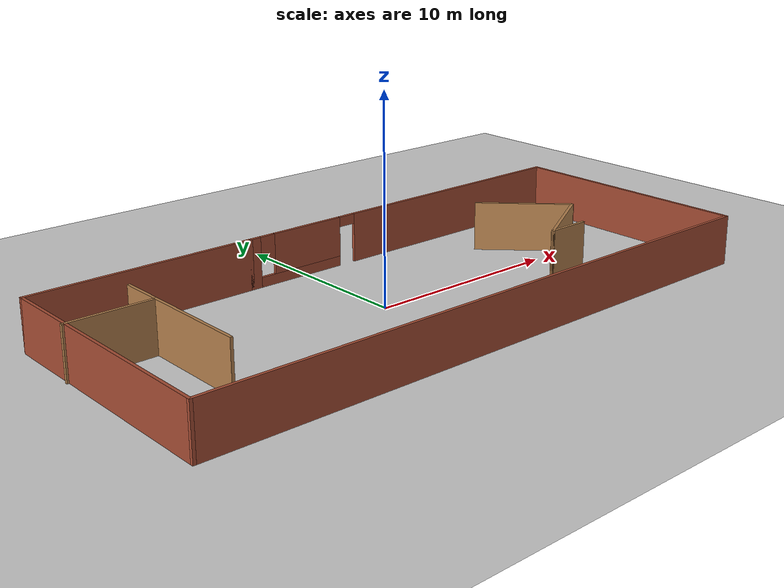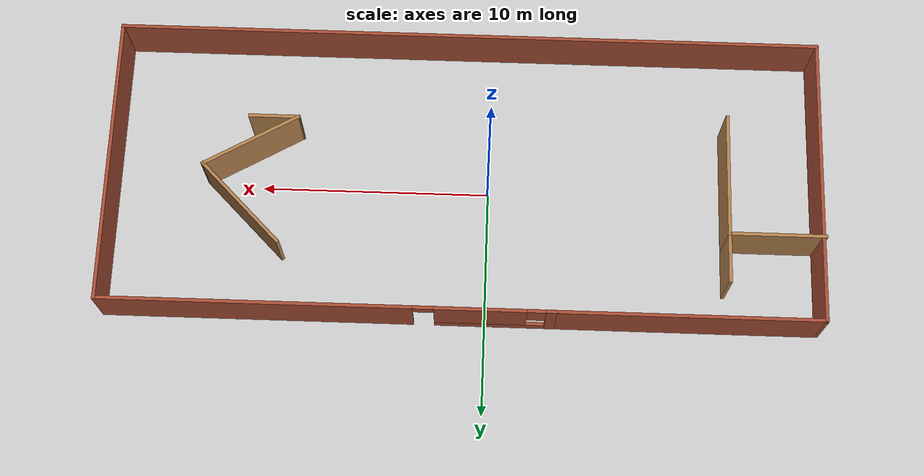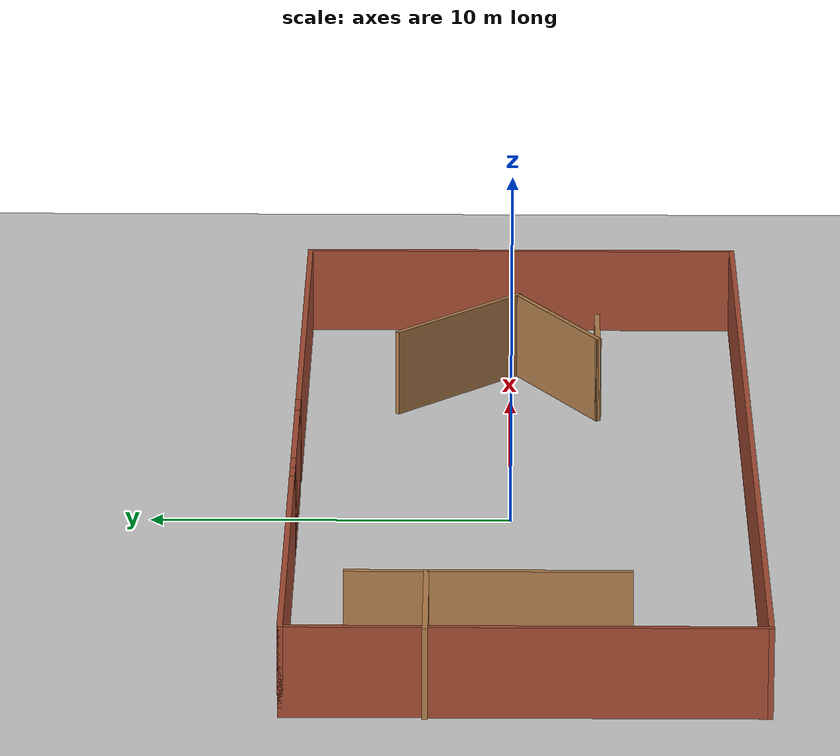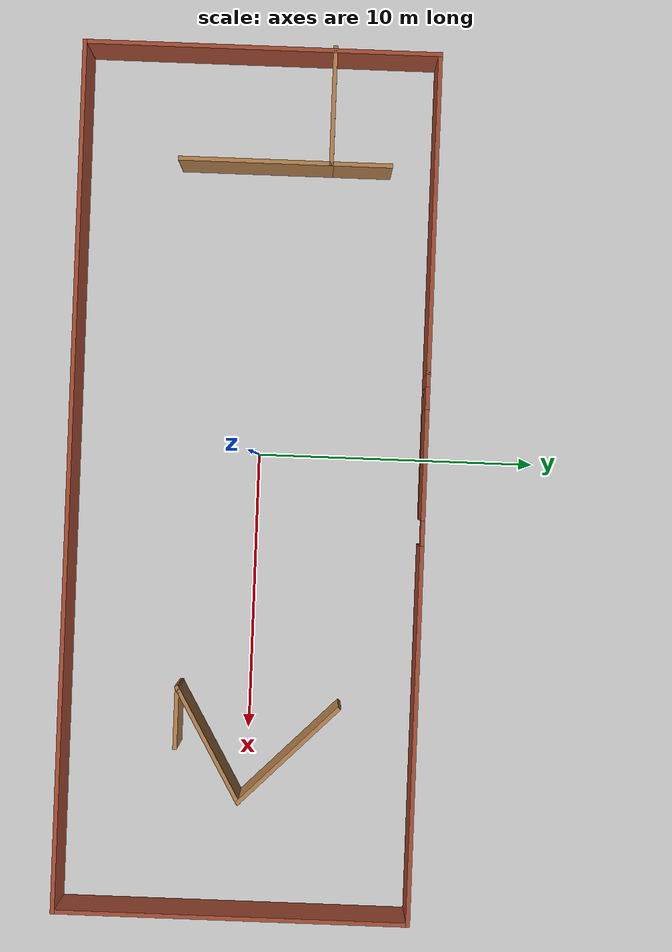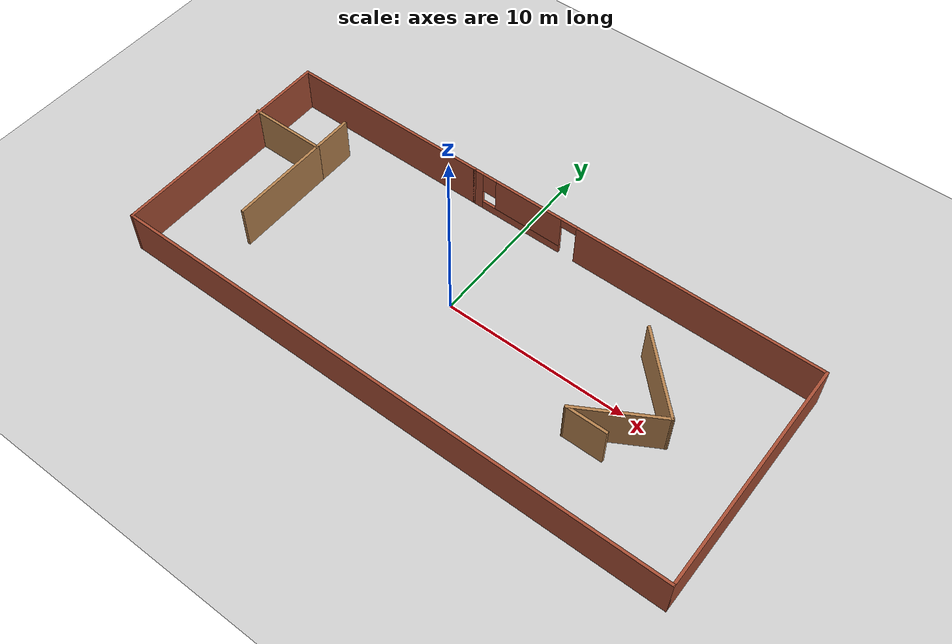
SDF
<sdf version="1.7">
 <world name="default">
  <light name="sun" type="directional">
   <pose>0 0 10 0 -0 0</pose>
   <diffuse>0.8 0.8 0.8 1</diffuse>
   <specular>0.2 0.2 0.2 1</specular>
   <attenuation>
    <range>1000</range>
    <constant>0.9</constant>
    <linear>0.01</linear>
    <quadratic>0.001</quadratic>
   </attenuation>
   <direction>-0.5 0.1 -0.9</direction>
   <spot><inner_angle>0</inner_angle><outer_angle>0</outer_angle><falloff>0</falloff></spot>
  </light>
  <model name="ground_plane">
   <static>1</static>
   <link name="link">
    <collision name="collision">
     <geometry><plane><normal>0 0 1</normal><size>100 100</size></plane></geometry>
     <surface>
      <contact><collide_bitmask>65535</collide_bitmask></contact>
      <friction><ode><mu>100</mu><mu2>50</mu2></ode></friction>
     </surface>
    </collision>
    <visual name="visual">
     <cast_shadows>0</cast_shadows>
     <geometry><plane><normal>0 0 1</normal><size>100 100</size></plane></geometry>
     <material>
      <script><uri>file://media/materials/scripts/gazebo.material</uri><name>Gazebo/Grey</name></script>
     </material>
    </visual>
   </link>
  </model>
  <gravity>0 0 -9.8</gravity>
  <magnetic_field>6e-06 2.3e-05 -4.2e-05</magnetic_field>
  <atmosphere type="adiabatic"/>
  <physics type="ode">
   <max_step_size>0.001</max_step_size>
   <real_time_factor>1</real_time_factor>
   <real_time_update_rate>1000</real_time_update_rate>
  </physics>
  <scene><ambient>0.4 0.4 0.4 1</ambient><background>0.7 0.7 0.7 1</background><shadows>1</shadows></scene>
  <spherical_coordinates>
   <surface_model>EARTH_WGS84</surface_model>
   <latitude_deg>0</latitude_deg>
   <longitude_deg>0</longitude_deg>
   <elevation>0</elevation>
   <heading_deg>0</heading_deg>
  </spherical_coordinates>
  <model name="hall_world">
   <pose>1.01109 -0.327757 0 0 -0 0</pose>
   <link name="Wall_10">
    <collision name="Wall_10_Collision">
     <geometry><box><size>31 0.15 2.5</size></box></geometry>
     <pose>0 0 1.25 0 -0 0</pose>
    </collision>
    <visual name="Wall_10_Visual">
     <pose>0 0 1.25 0 -0 0</pose>
     <geometry><box><size>31 0.15 2.5</size></box></geometry>
     <material>
      <script><uri>file://media/materials/scripts/gazebo.material</uri><name>Gazebo/Bricks</name></script>
      <ambient>1 1 1 1</ambient>
     </material>
     <meta><layer>0</layer></meta>
    </visual>
    <pose>0.046077 -6.3 0 0 -0 3.14159</pose>
   </link>
   <link name="Wall_11">
    <collision name="Wall_11_Collision">
     <geometry><box><size>12.75 0.15 2.5</size></box></geometry>
     <pose>0 0 1.25 0 -0 0</pose>
    </collision>
    <visual name="Wall_11_Visual">
     <pose>0 0 1.25 0 -0 0</pose>
     <geometry><box><size>12.75 0.15 2.5</size></box></geometry>
     <material>
      <script><uri>file://media/materials/scripts/gazebo.material</uri><name>Gazebo/Bricks</name></script>
      <ambient>1 1 1 1</ambient>
     </material>
     <meta><layer>0</layer></meta>
    </visual>
    <pose>-15.3789 -0 0 0 -0 1.5708</pose>
   </link>
   <link name="Wall_12">
    <collision name="Wall_12_Collision">
     <geometry><box><size>11.4 0.15 2.5</size></box></geometry>
     <pose>0 0 1.25 0 -0 0</pose>
    </collision>
    <visual name="Wall_12_Visual">
     <pose>0 0 1.25 0 -0 0</pose>
     <geometry><box><size>11.4 0.15 2.5</size></box></geometry>
     <material>
      <script><uri>file://media/materials/scripts/gazebo.material</uri><name>Gazebo/Bricks</name></script>
      <ambient>1 1 1 1</ambient>
     </material>
     <meta><layer>0</layer></meta>
    </visual>
    <pose>-9.75392 6.3 0 0 -0 0</pose>
   </link>
   <link name="Wall_14">
    <collision name="Wall_14_Collision">
     <geometry><box><size>4.25 0.15 2.5</size></box></geometry>
     <pose>0 0 1.25 0 -0 0</pose>
    </collision>
    <visual name="Wall_14_Visual">
     <pose>0 0 1.25 0 -0 0</pose>
     <geometry><box><size>4.25 0.15 2.5</size></box></geometry>
     <material>
      <script><uri>file://media/materials/scripts/gazebo.material</uri><name>Gazebo/Wood</name></script>
      <ambient>1 1 1 1</ambient>
     </material>
     <meta><layer>0</layer></meta>
    </visual>
    <pose>-13.4211 2.57977 0 0 -0 0</pose>
   </link>
   <link name="Wall_15">
    <collision name="Wall_15_Collision">
     <geometry><box><size>2.25 0.15 2.5</size></box></geometry>
     <pose>0 0 1.25 0 -0 0</pose>
    </collision>
    <visual name="Wall_15_Visual">
     <pose>0 0 1.25 0 -0 0</pose>
     <geometry><box><size>2.25 0.15 2.5</size></box></geometry>
     <material>
      <script><uri>file://media/materials/scripts/gazebo.material</uri><name>Gazebo/Wood</name></script>
      <ambient>1 1 1 1</ambient>
     </material>
     <meta><layer>0</layer></meta>
    </visual>
    <pose>-11.3711 3.62977 0 0 -0 1.5708</pose>
   </link>
   <link name="Wall_17">
    <collision name="Wall_17_Collision">
     <geometry><box><size>5.5 0.15 2.5</size></box></geometry>
     <pose>0 0 1.25 0 -0 0</pose>
    </collision>
    <visual name="Wall_17_Visual">
     <pose>0 0 1.25 0 -0 0</pose>
     <geometry><box><size>5.5 0.15 2.5</size></box></geometry>
     <material>
      <script><uri>file://media/materials/scripts/gazebo.material</uri><name>Gazebo/Wood</name></script>
      <ambient>1 1 1 1</ambient>
     </material>
     <meta><layer>0</layer></meta>
    </visual>
    <pose>-11.3711 -0.095227 0 0 -0 -1.5708</pose>
   </link>
   <link name="Wall_19">
    <collision name="Wall_19_Collision">
     <geometry><box><size>5 0.15 2.5</size></box></geometry>
     <pose>0 0 1.25 0 -0 0</pose>
    </collision>
    <visual name="Wall_19_Visual">
     <pose>0 0 1.25 0 -0 0</pose>
     <geometry><box><size>5 0.15 2.5</size></box></geometry>
     <material>
      <script><uri>file://media/materials/scripts/gazebo.material</uri><name>Gazebo/Wood</name></script>
      <ambient>1 1 1 1</ambient>
     </material>
     <meta><layer>0</layer></meta>
    </visual>
    <pose>9.65386 1.8329 0 0 -0 -0.785398</pose>
   </link>
   <link name="Wall_20">
    <collision name="Wall_20_Collision">
     <geometry><box><size>4.75 0.15 2.5</size></box></geometry>
     <pose>0 0 1.25 0 -0 0</pose>
    </collision>
    <visual name="Wall_20_Visual">
     <pose>0 0 1.25 0 -0 0</pose>
     <geometry><box><size>4.75 0.15 2.5</size></box></geometry>
     <material>
      <script><uri>file://media/materials/scripts/gazebo.material</uri><name>Gazebo/Wood</name></script>
      <ambient>1 1 1 1</ambient>
     </material>
     <meta><layer>0</layer></meta>
    </visual>
    <pose>9.37674 -1.03183 0 0 -0 -2.61799</pose>
   </link>
   <link name="Wall_21">
    <collision name="Wall_21_Collision">
     <geometry><box><size>2.25 0.15 2.5</size></box></geometry>
     <pose>0 0 1.25 0 -0 0</pose>
    </collision>
    <visual name="Wall_21_Visual">
     <pose>0 0 1.25 0 -0 0</pose>
     <geometry><box><size>2.25 0.15 2.5</size></box></geometry>
     <material>
      <script><uri>file://media/materials/scripts/gazebo.material</uri><name>Gazebo/Wood</name></script>
      <ambient>1 1 1 1</ambient>
     </material>
     <meta><layer>0</layer></meta>
    </visual>
    <pose>8.43488 -2.18183 0 0 -0 0</pose>
   </link>
   <link name="Wall_8">
    <pose>5.67108 6.3 0 0 -0 0</pose>
    <visual name="Wall_8_Visual_0">
     <pose>-9.57222 0 1.25 0 -0 0</pose>
     <geometry><box><size>0.605563 0.15 2.5</size></box></geometry>
     <material>
      <script><uri>file://media/materials/scripts/gazebo.material</uri><name>Gazebo/Bricks</name></script>
      <ambient>1 1 1 1</ambient>
     </material>
     <meta><layer>0</layer></meta>
    </visual>
    <collision name="Wall_8_Collision_0">
     <geometry><box><size>0.605563 0.15 2.5</size></box></geometry>
     <pose>-9.57222 0 1.25 0 -0 0</pose>
    </collision>
    <visual name="Wall_8_Visual_1">
     <pose>3.12072 0 1.25 0 -0 0</pose>
     <geometry><box><size>13.5086 0.15 2.5</size></box></geometry>
     <material>
      <script><uri>file://media/materials/scripts/gazebo.material</uri><name>Gazebo/Bricks</name></script>
      <ambient>1 1 1 1</ambient>
     </material>
     <meta><layer>0</layer></meta>
    </visual>
    <collision name="Wall_8_Collision_1">
     <geometry><box><size>13.5086 0.15 2.5</size></box></geometry>
     <pose>3.12072 0 1.25 0 -0 0</pose>
    </collision>
    <visual name="Wall_8_Visual_2">
     <pose>-6.90149 0 0.25 0 -0 0</pose>
     <geometry><box><size>4.73588 0.15 0.5</size></box></geometry>
     <material>
      <script><uri>file://media/materials/scripts/gazebo.material</uri><name>Gazebo/Bricks</name></script>
      <ambient>1 1 1 1</ambient>
     </material>
     <meta><layer>0</layer></meta>
    </visual>
    <collision name="Wall_8_Collision_2">
     <geometry><box><size>4.73588 0.15 0.5</size></box></geometry>
     <pose>-6.90149 0 0.25 0 -0 0</pose>
    </collision>
    <visual name="Wall_8_Visual_3">
     <pose>-6.5015 0 1.5 0 -0 0</pose>
     <geometry><box><size>3.93588 0.15 2</size></box></geometry>
     <material>
      <script><uri>file://media/materials/scripts/gazebo.material</uri><name>Gazebo/Bricks</name></script>
      <ambient>1 1 1 1</ambient>
     </material>
     <meta><layer>0</layer></meta>
    </visual>
    <collision name="Wall_8_Collision_3">
     <geometry><box><size>3.93588 0.15 2</size></box></geometry>
     <pose>-6.5015 0 1.5 0 -0 0</pose>
    </collision>
    <visual name="Wall_8_Visual_4">
     <pose>-8.86944 0 1.9 0 -0 0</pose>
     <geometry><box><size>0.8 0.15 1.2</size></box></geometry>
     <material>
      <script><uri>file://media/materials/scripts/gazebo.material</uri><name>Gazebo/Bricks</name></script>
      <ambient>1 1 1 1</ambient>
     </material>
     <meta><layer>0</layer></meta>
    </visual>
    <collision name="Wall_8_Collision_4">
     <geometry><box><size>0.8 0.15 1.2</size></box></geometry>
     <pose>-8.86944 0 1.9 0 -0 0</pose>
    </collision>
    <visual name="Wall_8_Visual_5">
     <pose>-4.08355 0 2.25 0 -0 0</pose>
     <geometry><box><size>0.9 0.15 0.5</size></box></geometry>
     <material>
      <script><uri>file://media/materials/scripts/gazebo.material</uri><name>Gazebo/Bricks</name></script>
      <ambient>1 1 1 1</ambient>
     </material>
     <meta><layer>0</layer></meta>
    </visual>
    <collision name="Wall_8_Collision_5">
     <geometry><box><size>0.9 0.15 0.5</size></box></geometry>
     <pose>-4.08355 0 2.25 0 -0 0</pose>
    </collision>
   </link>
   <link name="Wall_9">
    <collision name="Wall_9_Collision">
     <geometry><box><size>12.75 0.15 2.5</size></box></geometry>
     <pose>0 0 1.25 0 -0 0</pose>
    </collision>
    <visual name="Wall_9_Visual">
     <pose>0 0 1.25 0 -0 0</pose>
     <geometry><box><size>12.75 0.15 2.5</size></box></geometry>
     <material>
      <script><uri>file://media/materials/scripts/gazebo.material</uri><name>Gazebo/Bricks</name></script>
      <ambient>1 1 1 1</ambient>
     </material>
     <meta><layer>0</layer></meta>
    </visual>
    <pose>15.4711 -0 0 0 -0 -1.5708</pose>
   </link>
   <static>1</static>
  </model>
 </world>
</sdf>
